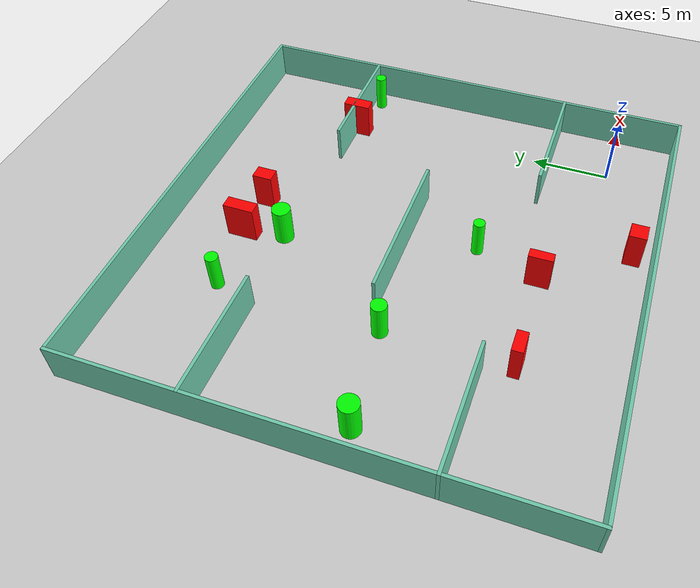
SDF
<sdf version="1.7">
 <world name="default">
  <light name="sun" type="directional">
   <pose>0 0 10 0 -0 0</pose>
   <diffuse>0.8 0.8 0.8 1</diffuse>
   <specular>0.2 0.2 0.2 1</specular>
   <attenuation>
    <range>1000</range>
    <constant>0.9</constant>
    <linear>0.01</linear>
    <quadratic>0.001</quadratic>
   </attenuation>
   <direction>-0.5 0.1 -0.9</direction>
   <spot><inner_angle>0</inner_angle><outer_angle>0</outer_angle><falloff>0</falloff></spot>
  </light>
  <model name="ground_plane">
   <static>1</static>
   <link name="link">
    <collision name="collision">
     <geometry><plane><normal>0 0 1</normal><size>100 100</size></plane></geometry>
     <surface>
      <contact><collide_bitmask>65535</collide_bitmask></contact>
      <friction><ode><mu>100</mu><mu2>50</mu2></ode></friction>
     </surface>
    </collision>
    <visual name="visual">
     <cast_shadows>0</cast_shadows>
     <geometry><plane><normal>0 0 1</normal><size>100 100</size></plane></geometry>
     <material>
      <script><uri>file://media/materials/scripts/gazebo.material</uri><name>Gazebo/Grey</name></script>
     </material>
    </visual>
   </link>
  </model>
  <gravity>0 0 -9.8</gravity>
  <magnetic_field>6e-06 2.3e-05 -4.2e-05</magnetic_field>
  <atmosphere type="adiabatic"/>
  <physics type="ode">
   <max_step_size>0.001</max_step_size>
   <real_time_factor>1</real_time_factor>
   <real_time_update_rate>1000</real_time_update_rate>
  </physics>
  <scene><ambient>0.4 0.4 0.4 1</ambient><background>0.7 0.7 0.7 1</background><shadows>1</shadows></scene>
  <spherical_coordinates>
   <surface_model>EARTH_WGS84</surface_model>
   <latitude_deg>0</latitude_deg>
   <longitude_deg>0</longitude_deg>
   <elevation>0</elevation>
   <heading_deg>0</heading_deg>
  </spherical_coordinates>
  <model name="my_base_walls">
   <link name="Wall_10">
    <collision name="Wall_10_Collision">
     <geometry><box><size>8.2 0.2 2.5</size></box></geometry>
     <pose>0 0 1.25 0 -0 0</pose>
    </collision>
    <visual name="Wall_10_Visual">
     <pose>0 0 1.25 0 -0 0</pose>
     <geometry><box><size>8.2 0.2 2.5</size></box></geometry>
     <material>
      <script><uri>file://media/materials/scripts/gazebo.material</uri><name>Gazebo/Grey</name></script>
      <ambient>0.435294 0.796078 0.67451 1</ambient>
     </material>
     <meta><layer>0</layer></meta>
    </visual>
    <pose>-11 -7 0 0 -0 0</pose>
   </link>
   <link name="Wall_12">
    <collision name="Wall_12_Collision">
     <geometry><box><size>8.2 0.2 2.5</size></box></geometry>
     <pose>0 0 1.25 0 -0 0</pose>
    </collision>
    <visual name="Wall_12_Visual">
     <pose>0 0 1.25 0 -0 0</pose>
     <geometry><box><size>8.2 0.2 2.5</size></box></geometry>
     <material>
      <script><uri>file://media/materials/scripts/gazebo.material</uri><name>Gazebo/Grey</name></script>
      <ambient>0.435294 0.796078 0.67451 1</ambient>
     </material>
     <meta><layer>0</layer></meta>
    </visual>
    <pose>-11 7 0 0 -0 0</pose>
   </link>
   <link name="Wall_14">
    <collision name="Wall_14_Collision">
     <geometry><box><size>8.2 0.2 2.5</size></box></geometry>
     <pose>0 0 1.25 0 -0 0</pose>
    </collision>
    <visual name="Wall_14_Visual">
     <pose>0 0 1.25 0 -0 0</pose>
     <geometry><box><size>8.2 0.2 2.5</size></box></geometry>
     <material>
      <script><uri>file://media/materials/scripts/gazebo.material</uri><name>Gazebo/Grey</name></script>
      <ambient>0.435294 0.796078 0.67451 1</ambient>
     </material>
     <meta><layer>0</layer></meta>
    </visual>
    <pose>11 7 0 0 -0 3.14159</pose>
   </link>
   <link name="Wall_16">
    <collision name="Wall_16_Collision">
     <geometry><box><size>10.2 0.2 2.5</size></box></geometry>
     <pose>0 0 1.25 0 -0 0</pose>
    </collision>
    <visual name="Wall_16_Visual">
     <pose>0 0 1.25 0 -0 0</pose>
     <geometry><box><size>10.2 0.2 2.5</size></box></geometry>
     <material>
      <script><uri>file://media/materials/scripts/gazebo.material</uri><name>Gazebo/Grey</name></script>
      <ambient>0.435294 0.796078 0.67451 1</ambient>
     </material>
     <meta><layer>0</layer></meta>
    </visual>
    <pose>0 0 0 0 -0 3.14159</pose>
   </link>
   <link name="Wall_2">
    <collision name="Wall_2_Collision">
     <geometry><box><size>30.2 0.2 2.5</size></box></geometry>
     <pose>0 0 1.25 0 -0 0</pose>
    </collision>
    <visual name="Wall_2_Visual">
     <pose>0 0 1.25 0 -0 0</pose>
     <geometry><box><size>30.2 0.2 2.5</size></box></geometry>
     <material>
      <script><uri>file://media/materials/scripts/gazebo.material</uri><name>Gazebo/Grey</name></script>
      <ambient>0.435294 0.796078 0.67451 1</ambient>
     </material>
     <meta><layer>0</layer></meta>
    </visual>
    <pose>0 -15 0 0 -0 3.14159</pose>
   </link>
   <link name="Wall_3">
    <collision name="Wall_3_Collision">
     <geometry><box><size>30.2 0.2 2.5</size></box></geometry>
     <pose>0 0 1.25 0 -0 0</pose>
    </collision>
    <visual name="Wall_3_Visual">
     <pose>0 0 1.25 0 -0 0</pose>
     <geometry><box><size>30.2 0.2 2.5</size></box></geometry>
     <material>
      <script><uri>file://media/materials/scripts/gazebo.material</uri><name>Gazebo/Grey</name></script>
      <ambient>0.435294 0.796078 0.67451 1</ambient>
     </material>
     <meta><layer>0</layer></meta>
    </visual>
    <pose>-15 0 0 0 -0 1.5708</pose>
   </link>
   <link name="Wall_4">
    <collision name="Wall_4_Collision">
     <geometry><box><size>30.2 0.2 2.5</size></box></geometry>
     <pose>0 0 1.25 0 -0 0</pose>
    </collision>
    <visual name="Wall_4_Visual">
     <pose>0 0 1.25 0 -0 0</pose>
     <geometry><box><size>30.2 0.2 2.5</size></box></geometry>
     <material>
      <script><uri>file://media/materials/scripts/gazebo.material</uri><name>Gazebo/Grey</name></script>
      <ambient>0.435294 0.796078 0.67451 1</ambient>
     </material>
     <meta><layer>0</layer></meta>
    </visual>
    <pose>0 15 0 0 -0 0</pose>
   </link>
   <link name="Wall_6">
    <collision name="Wall_6_Collision">
     <geometry><box><size>30.2 0.2 2.5</size></box></geometry>
     <pose>0 0 1.25 0 -0 0</pose>
    </collision>
    <visual name="Wall_6_Visual">
     <pose>0 0 1.25 0 -0 0</pose>
     <geometry><box><size>30.2 0.2 2.5</size></box></geometry>
     <material>
      <script><uri>file://media/materials/scripts/gazebo.material</uri><name>Gazebo/Grey</name></script>
      <ambient>0.435294 0.796078 0.67451 1</ambient>
     </material>
     <meta><layer>0</layer></meta>
    </visual>
    <pose>15 0 0 0 -0 1.5708</pose>
   </link>
   <link name="Wall_8">
    <collision name="Wall_8_Collision">
     <geometry><box><size>8.2 0.2 2.5</size></box></geometry>
     <pose>0 0 1.25 0 -0 0</pose>
    </collision>
    <visual name="Wall_8_Visual">
     <pose>0 0 1.25 0 -0 0</pose>
     <geometry><box><size>8.2 0.2 2.5</size></box></geometry>
     <material>
      <script><uri>file://media/materials/scripts/gazebo.material</uri><name>Gazebo/Grey</name></script>
      <ambient>0.435294 0.796078 0.67451 1</ambient>
     </material>
     <meta><layer>0</layer></meta>
    </visual>
    <pose>11 -7 0 0 -0 3.14159</pose>
   </link>
   <static>1</static>
   <pose>-11 11 0 0 -0 0</pose>
  </model>
  <model name="cylinder1">
   <static>1</static>
   <link name="link">
    <inertial>
     <mass>1</mass>
     <inertia><ixx>0.5</ixx><ixy>0</ixy><ixz>0</ixz><iyy>0.5</iyy><iyz>0</iyz><izz>1</izz></inertia>
    </inertial>
    <collision name="collision">
     <geometry><cylinder><radius>0.6087240266509435</radius><length>2.5</length></cylinder></geometry>
    </collision>
    <visual name="visual">
     <geometry><cylinder><radius>0.6087240266509435</radius><length>2.5</length></cylinder></geometry>
     <material>
      <ambient>0 1 0 1</ambient>
      <diffuse>0 1 0 1</diffuse>
      <specular>0.1 0.1 0.1 1</specular>
      <emissive>0 0 0 0</emissive>
     </material>
    </visual>
   </link>
   <pose>-23.850117950737918 9.417401310154132 1.25 0 0 0</pose>
  </model>
  <model name="cylinder2">
   <static>1</static>
   <link name="link">
    <inertial>
     <mass>1</mass>
     <inertia><ixx>0.5</ixx><ixy>0</ixy><ixz>0</ixz><iyy>0.5</iyy><iyz>0</iyz><izz>1</izz></inertia>
    </inertial>
    <collision name="collision">
     <geometry><cylinder><radius>0.36944709771971473</radius><length>2.5</length></cylinder></geometry>
    </collision>
    <visual name="visual">
     <geometry><cylinder><radius>0.36944709771971473</radius><length>2.5</length></cylinder></geometry>
     <material>
      <ambient>0 1 0 1</ambient>
      <diffuse>0 1 0 1</diffuse>
      <specular>0.1 0.1 0.1 1</specular>
      <emissive>0 0 0 0</emissive>
     </material>
    </visual>
   </link>
   <pose>-9.489464128782636 6.5605911876681695 1.25 0 0 0</pose>
  </model>
  <model name="cylinder3">
   <static>1</static>
   <link name="link">
    <inertial>
     <mass>1</mass>
     <inertia><ixx>0.5</ixx><ixy>0</ixy><ixz>0</ixz><iyy>0.5</iyy><iyz>0</iyz><izz>1</izz></inertia>
    </inertial>
    <collision name="collision">
     <geometry><cylinder><radius>0.4091593747476834</radius><length>2.5</length></cylinder></geometry>
    </collision>
    <visual name="visual">
     <geometry><cylinder><radius>0.4091593747476834</radius><length>2.5</length></cylinder></geometry>
     <material>
      <ambient>0 1 0 1</ambient>
      <diffuse>0 1 0 1</diffuse>
      <specular>0.1 0.1 0.1 1</specular>
      <emissive>0 0 0 0</emissive>
     </material>
    </visual>
   </link>
   <pose>-17.267979002010502 20.681158471536325 1.25 0 0 0</pose>
  </model>
  <model name="cylinder4">
   <static>1</static>
   <link name="link">
    <inertial>
     <mass>1</mass>
     <inertia><ixx>0.5</ixx><ixy>0</ixy><ixz>0</ixz><iyy>0.5</iyy><iyz>0</iyz><izz>1</izz></inertia>
    </inertial>
    <collision name="collision">
     <geometry><cylinder><radius>0.6007866014164296</radius><length>2.5</length></cylinder></geometry>
    </collision>
    <visual name="visual">
     <geometry><cylinder><radius>0.6007866014164296</radius><length>2.5</length></cylinder></geometry>
     <material>
      <ambient>0 1 0 1</ambient>
      <diffuse>0 1 0 1</diffuse>
      <specular>0.1 0.1 0.1 1</specular>
      <emissive>0 0 0 0</emissive>
     </material>
    </visual>
   </link>
   <pose>-12.32407743924433 18.49889190066468 1.25 0 0 0</pose>
  </model>
  <model name="cylinder5">
   <static>1</static>
   <link name="link">
    <inertial>
     <mass>1</mass>
     <inertia><ixx>0.5</ixx><ixy>0</ixy><ixz>0</ixz><iyy>0.5</iyy><iyz>0</iyz><izz>1</izz></inertia>
    </inertial>
    <collision name="collision">
     <geometry><cylinder><radius>0.4911948141983818</radius><length>2.5</length></cylinder></geometry>
    </collision>
    <visual name="visual">
     <geometry><cylinder><radius>0.4911948141983818</radius><length>2.5</length></cylinder></geometry>
     <material>
      <ambient>0 1 0 1</ambient>
      <diffuse>0 1 0 1</diffuse>
      <specular>0.1 0.1 0.1 1</specular>
      <emissive>0 0 0 0</emissive>
     </material>
    </visual>
   </link>
   <pose>-17.447297159257722 10.158113979981556 1.25 0 0 0</pose>
  </model>
  <model name="cylinder6">
   <static>1</static>
   <link name="link">
    <inertial>
     <mass>1</mass>
     <inertia><ixx>0.5</ixx><ixy>0</ixy><ixz>0</ixz><iyy>0.5</iyy><iyz>0</iyz><izz>1</izz></inertia>
    </inertial>
    <collision name="collision">
     <geometry><cylinder><radius>0.36034721312898327</radius><length>2.5</length></cylinder></geometry>
    </collision>
    <visual name="visual">
     <geometry><cylinder><radius>0.36034721312898327</radius><length>2.5</length></cylinder></geometry>
     <material>
      <ambient>0 1 0 1</ambient>
      <diffuse>0 1 0 1</diffuse>
      <specular>0.1 0.1 0.1 1</specular>
      <emissive>0 0 0 0</emissive>
     </material>
    </visual>
   </link>
   <pose>2.54867400267187 17.316233227333242 1.25 0 0 0</pose>
  </model>
  <model name="box1">
   <static>1</static>
   <link name="link">
    <inertial>
     <mass>1</mass>
     <inertia><ixx>0.083</ixx><ixy>0</ixy><ixz>0</ixz><iyy>0.083</iyy><iyz>0</iyz><izz>0.083</izz></inertia>
    </inertial>
    <collision name="collision">
     <geometry><box><size>0.8129413194398165 1.815829740318347 2.5</size></box></geometry>
    </collision>
    <visual name="visual">
     <geometry><box><size>0.8129413194398165 1.815829740318347 2.5</size></box></geometry>
     <material>
      <ambient>1 0 0 1</ambient>
      <diffuse>1 0 0 1</diffuse>
      <specular>0.1 0.1 0.1 1</specular>
      <emissive>0 0 0 0</emissive>
     </material>
    </visual>
    <sensor name="my_contact" type="contact">
     <contact><collision>box_collision</collision><topic>__default_topic__</topic></contact>
    </sensor>
   </link>
   <pose>-0.7571841633244851 17.839344309578657 1.25 0 0 0</pose>
  </model>
  <model name="box2">
   <static>1</static>
   <link name="link">
    <inertial>
     <mass>1</mass>
     <inertia><ixx>0.083</ixx><ixy>0</ixy><ixz>0</ixz><iyy>0.083</iyy><iyz>0</iyz><izz>0.083</izz></inertia>
    </inertial>
    <collision name="collision">
     <geometry><box><size>0.8235495235898584 1.990893775754121 2.5</size></box></geometry>
    </collision>
    <visual name="visual">
     <geometry><box><size>0.8235495235898584 1.990893775754121 2.5</size></box></geometry>
     <material>
      <ambient>1 0 0 1</ambient>
      <diffuse>1 0 0 1</diffuse>
      <specular>0.1 0.1 0.1 1</specular>
      <emissive>0 0 0 0</emissive>
     </material>
    </visual>
    <sensor name="my_contact" type="contact">
     <contact><collision>box_collision</collision><topic>__default_topic__</topic></contact>
    </sensor>
   </link>
   <pose>-12.79744510022385 21.052789371225234 1.25 0 0 0</pose>
  </model>
  <model name="box3">
   <static>1</static>
   <link name="link">
    <inertial>
     <mass>1</mass>
     <inertia><ixx>0.083</ixx><ixy>0</ixy><ixz>0</ixz><iyy>0.083</iyy><iyz>0</iyz><izz>0.083</izz></inertia>
    </inertial>
    <collision name="collision">
     <geometry><box><size>0.9079159020107932 1.2692402176198168 2.5</size></box></geometry>
    </collision>
    <visual name="visual">
     <geometry><box><size>0.9079159020107932 1.2692402176198168 2.5</size></box></geometry>
     <material>
      <ambient>1 0 0 1</ambient>
      <diffuse>1 0 0 1</diffuse>
      <specular>0.1 0.1 0.1 1</specular>
      <emissive>0 0 0 0</emissive>
     </material>
    </visual>
    <sensor name="my_contact" type="contact">
     <contact><collision>box_collision</collision><topic>__default_topic__</topic></contact>
    </sensor>
   </link>
   <pose>-9.674766004459952 20.8821985035789 1.25 0 0 0</pose>
  </model>
  <model name="box4">
   <static>1</static>
   <link name="link">
    <inertial>
     <mass>1</mass>
     <inertia><ixx>0.083</ixx><ixy>0</ixy><ixz>0</ixz><iyy>0.083</iyy><iyz>0</iyz><izz>0.083</izz></inertia>
    </inertial>
    <collision name="collision">
     <geometry><box><size>1.4360986428314142 0.6926419184025187 2.5</size></box></geometry>
    </collision>
    <visual name="visual">
     <geometry><box><size>1.4360986428314142 0.6926419184025187 2.5</size></box></geometry>
     <material>
      <ambient>1 0 0 1</ambient>
      <diffuse>1 0 0 1</diffuse>
      <specular>0.1 0.1 0.1 1</specular>
      <emissive>0 0 0 0</emissive>
     </material>
    </visual>
    <sensor name="my_contact" type="contact">
     <contact><collision>box_collision</collision><topic>__default_topic__</topic></contact>
    </sensor>
   </link>
   <pose>-17.300196822820375 2.1614740456317136 1.25 0 0 0</pose>
  </model>
  <model name="box5">
   <static>1</static>
   <link name="link">
    <inertial>
     <mass>1</mass>
     <inertia><ixx>0.083</ixx><ixy>0</ixy><ixz>0</ixz><iyy>0.083</iyy><iyz>0</iyz><izz>0.083</izz></inertia>
    </inertial>
    <collision name="collision">
     <geometry><box><size>1.122971707401648 1.0659828045687558 2.5</size></box></geometry>
    </collision>
    <visual name="visual">
     <geometry><box><size>1.122971707401648 1.0659828045687558 2.5</size></box></geometry>
     <material>
      <ambient>1 0 0 1</ambient>
      <diffuse>1 0 0 1</diffuse>
      <specular>0.1 0.1 0.1 1</specular>
      <emissive>0 0 0 0</emissive>
     </material>
    </visual>
    <sensor name="my_contact" type="contact">
     <contact><collision>box_collision</collision><topic>__default_topic__</topic></contact>
    </sensor>
   </link>
   <pose>-7.045739079652197 -2.7531278872755123 1.25 0 0 0</pose>
  </model>
  <model name="box6">
   <static>1</static>
   <link name="link">
    <inertial>
     <mass>1</mass>
     <inertia><ixx>0.083</ixx><ixy>0</ixy><ixz>0</ixz><iyy>0.083</iyy><iyz>0</iyz><izz>0.083</izz></inertia>
    </inertial>
    <collision name="collision">
     <geometry><box><size>0.6366950375317811 1.5247232511339328 2.5</size></box></geometry>
    </collision>
    <visual name="visual">
     <geometry><box><size>0.6366950375317811 1.5247232511339328 2.5</size></box></geometry>
     <material>
      <ambient>1 0 0 1</ambient>
      <diffuse>1 0 0 1</diffuse>
      <specular>0.1 0.1 0.1 1</specular>
      <emissive>0 0 0 0</emissive>
     </material>
    </visual>
    <sensor name="my_contact" type="contact">
     <contact><collision>box_collision</collision><topic>__default_topic__</topic></contact>
    </sensor>
   </link>
   <pose>-10.842202431738944 2.404342804143459 1.25 0 0 0</pose>
  </model>
 </world>
</sdf>
